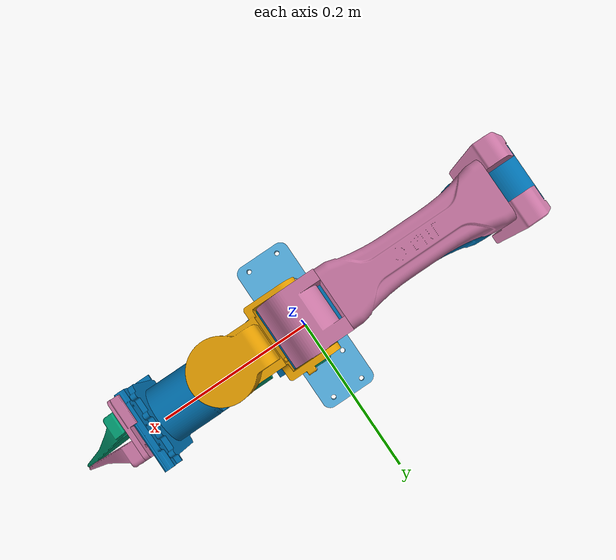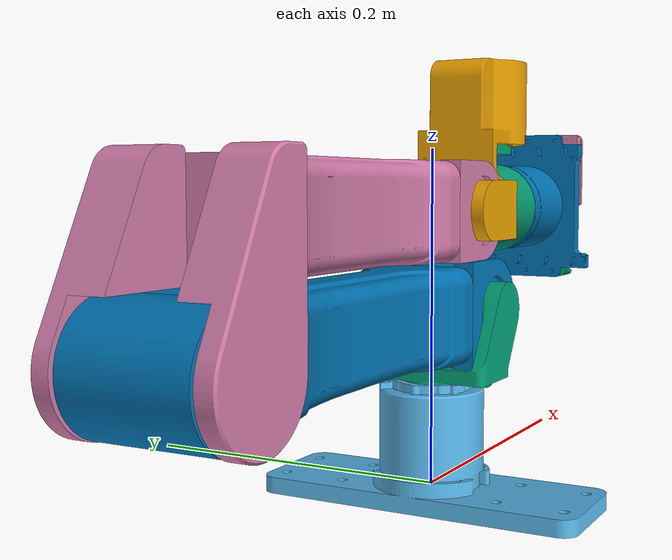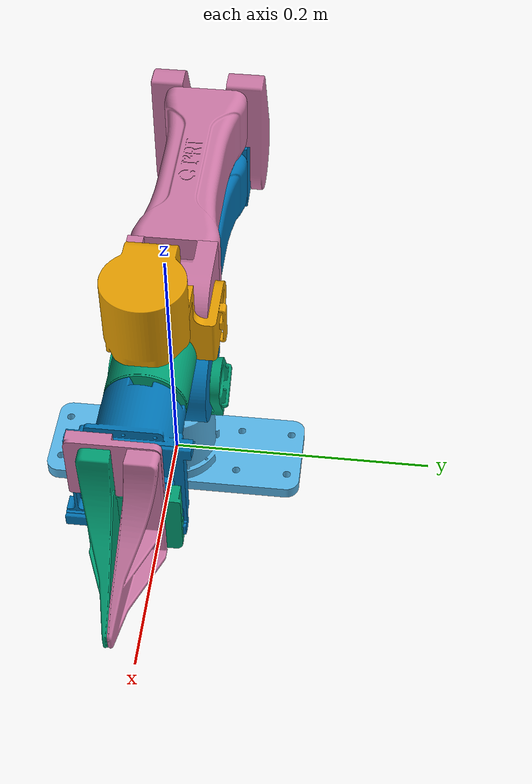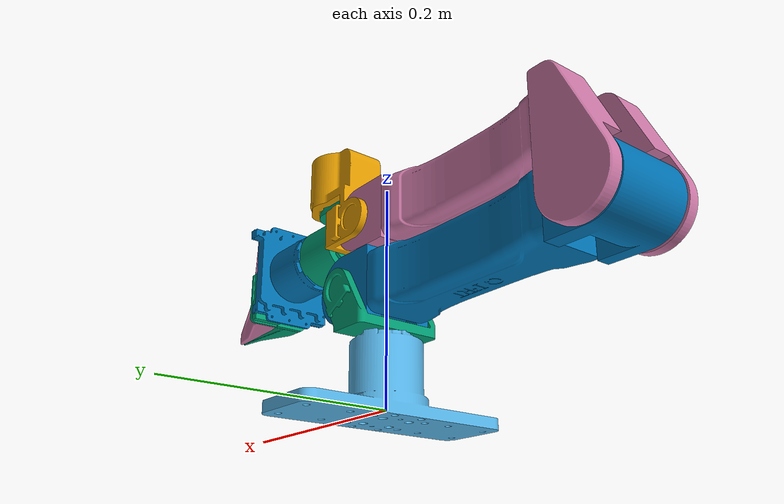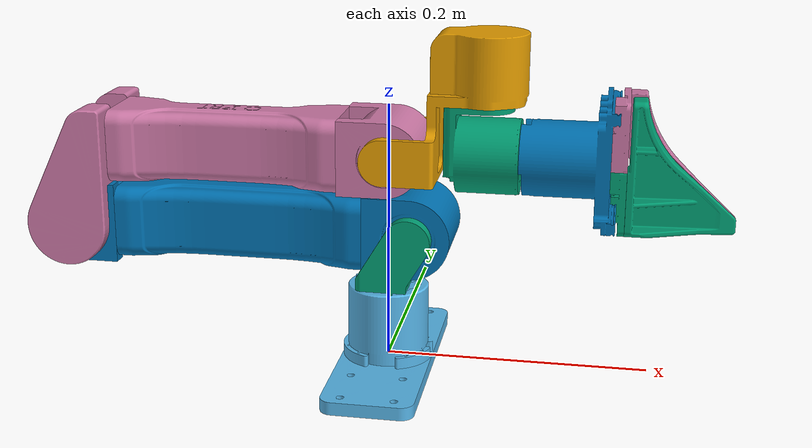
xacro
<?xml version="1.0" ?>
<robot xmlns:xacro="http://www.ros.org/wiki/xacro" name="yam">
   <!-- Include the arm macro -->
   <xacro:include filename="$(find yam_arm_description)/urdf/yam_arm_macro.xacro"/>

   <!-- World link -->
   <link name="world">
      <inertial>
         <origin xyz="0.0 0.0 0.0" rpy="0.0 0.0 0.0"/>
         <mass value="0.0"/>
         <inertia ixx="0.0" iyy="0.0" izz="0.0" ixy="0" ixz="0" iyz="0"/>
      </inertial>
   </link>

   <!-- Use the yam_arm macro with empty prefix, parent_link="world", and camera disabled -->
   <xacro:yam_arm prefix="" parent_link="world" xyz="0.0 0.0 0.0" rpy="0.0 0.0 0.0" use_camera="false"/>

</robot>

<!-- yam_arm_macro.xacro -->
<robot xmlns:xacro="http://www.ros.org/wiki/xacro">
  <xacro:macro name="yam_arm" params="prefix parent_link xyz rpy use_camera:=false">
    <!-- Arm base link -->
    <link name="${prefix}arm">
      <inertial>
        <origin xyz="0.0 0.0 0.026" rpy="0.0 0.0 0.0"/>
        <mass value="0.21895644158459424"/>
        <inertia ixx="0.00013879124248906134" iyy="0.00013879124248906134" izz="0.00010282878735692499" ixy="0" ixz="0" iyz="0"/>
      </inertial>
      <visual name="${prefix}model2">
        <origin xyz="-2.0738360577213484e-05 2.041311002275178e-05 0.01154286287615687" rpy="1.5701130102263443 0.005344186766801151 -3.1414365496107033"/>
        <geometry>
          <mesh filename="package://yam_arm_description/meshes/converted_model2_808080ff.obj"/>
        </geometry>
      </visual>
      <collision name="${prefix}model2_collision">
        <origin xyz="-2.0738360577213484e-05 2.041311002275178e-05 0.01154286287615687" rpy="1.5701130102263443 0.005344186766801151 -3.1414365496107033"/>
        <geometry>
          <mesh filename="package://yam_arm_description/meshes/converted_model2_808080ff.obj"/>
        </geometry>
      </collision>
    </link>
    <joint type="fixed" name="${prefix}parent2arm_fixed">
      <parent link="${parent_link}"/>
      <child link="${prefix}arm"/>
      <origin xyz="${xyz}" rpy="${rpy}"/>
    </joint>

    <!-- Link 1 -->
    <link name="${prefix}link_1">
      <inertial>
        <origin xyz="-0.00192861 -0.00795735 0.0208176" rpy="1.6743480392523338 -0.6015439689011491 1.5666873963753192"/>
        <mass value="0.12415"/>
        <inertia ixx="0.000180751" iyy="0.000145532" izz="5.89179e-05" ixy="0" ixz="0" iyz="0"/>
      </inertial>
      <visual name="${prefix}model2__2">
        <origin xyz="0.0007117901440024366 -0.008267794027987337 0.022250179687008112" rpy="1.5650454550240567 -0.6317582807873867 1.5710673633815686"/>
        <geometry>
          <mesh filename="package://yam_arm_description/meshes/converted_model2__2_808080ff.obj"/>
        </geometry>
      </visual>
      <collision name="${prefix}model2__2_collision">
        <origin xyz="0.0007117901440024366 -0.008267794027987337 0.022250179687008112" rpy="1.5650454550240567 -0.6317582807873867 1.5710673633815686"/>
        <geometry>
          <mesh filename="package://yam_arm_description/meshes/converted_model2__2_808080ff.obj"/>
        </geometry>
      </collision>
    </link>
    <link name="${prefix}joint1_link">
      <inertial>
        <origin xyz="0.0 0.0 0.0" rpy="0.0 0.0 0.0"/>
        <mass value="0.001"/>
        <inertia ixx="1e-09" iyy="1e-09" izz="1e-09" ixy="0" ixz="0" iyz="0"/>
      </inertial>
    </link>
    <joint type="revolute" name="${prefix}joint1">
      <parent link="${prefix}arm"/>
      <child link="${prefix}joint1_link"/>
      <origin xyz="0.0 0.0 0.0631" rpy="0.0 0.0 1.5707963267948963"/>
      <axis xyz="0.0 0.0 1.0"/>
      <limit lower="-2.61799" upper="3.05433" effort="100" velocity="100"/>
    </joint>
    <joint type="fixed" name="${prefix}joint1_offset">
      <parent link="${prefix}joint1_link"/>
      <child link="${prefix}link_1"/>
      <origin xyz="-0.0 -0.0 -0.0" rpy="0.0 0.0 0.0"/>
    </joint>

    <!-- Link 2 -->
    <link name="${prefix}link_2">
      <inertial>
        <origin xyz="0.132008 2.10599e-06 0.000293073" rpy="1.5707963267948966 0.0 1.5707963267948966"/>
        <mass value="1.24434"/>
        <inertia ixx="0.0121902" iyy="0.0121318" izz="0.000683304" ixy="0" ixz="0" iyz="0"/>
      </inertial>
      <visual name="${prefix}model2__3">
        <origin xyz="0.26007948449650414 2.5977632368834325e-07 0.00022869283697025413" rpy="0.0012886015838013758 0.0 1.5707963267948966"/>
        <geometry>
          <mesh filename="package://yam_arm_description/meshes/converted_model2__3_808080ff.obj"/>
        </geometry>
      </visual>
      <collision name="${prefix}model2__3_collision">
        <origin xyz="0.26007948449650414 2.5977632368834325e-07 0.00022869283697025413" rpy="0.0012886015838013758 0.0 1.5707963267948966"/>
        <geometry>
          <mesh filename="package://yam_arm_description/meshes/converted_model2__3_808080ff.obj"/>
        </geometry>
      </collision>
      <visual name="${prefix}model2__4">
        <origin xyz="0.003920561027152974 2.5977629421192194e-07 0.00022869282878015162" rpy="-0.0012886020855807743 0.0 1.5707963267948966"/>
        <geometry>
          <mesh filename="package://yam_arm_description/meshes/converted_model2__4_808080ff.obj"/>
        </geometry>
      </visual>
      <collision name="${prefix}model2__4_collision">
        <origin xyz="0.003920561027152974 2.5977629421192194e-07 0.00022869282878015162" rpy="-0.0012886020855807743 0.0 1.5707963267948966"/>
        <geometry>
          <mesh filename="package://yam_arm_description/meshes/converted_model2__4_808080ff.obj"/>
        </geometry>
      </collision>
      <visual name="${prefix}model2__5">
        <origin xyz="0.1320117461361114 -1.306943646950387e-05 9.079293692478702e-08" rpy="1.5720341600620127 -1.5679213575591051 -1.5720413321413815"/>
        <geometry>
          <mesh filename="package://yam_arm_description/meshes/converted_model2__5_808080ff.obj"/>
        </geometry>
      </visual>
      <collision name="${prefix}model2__5_collision">
        <origin xyz="0.1320117461361114 -1.306943646950387e-05 9.079293692478702e-08" rpy="1.5720341600620127 -1.5679213575591051 -1.5720413321413815"/>
        <geometry>
          <mesh filename="package://yam_arm_description/meshes/converted_model2__5_808080ff.obj"/>
        </geometry>
      </collision>
    </link>
    <link name="${prefix}joint2_link">
      <inertial>
        <origin xyz="0.0 0.0 0.0" rpy="0.0 0.0 0.0"/>
        <mass value="0.001"/>
        <inertia ixx="1e-09" iyy="1e-09" izz="1e-09" ixy="0" ixz="0" iyz="0"/>
      </inertial>
    </link>
    <joint type="revolute" name="${prefix}joint2">
      <parent link="${prefix}link_1"/>
      <child link="${prefix}joint2_link"/>
      <origin xyz="2.5e-05 -0.02 0.0409" rpy="1.5707963267948966 0.0 1.5707963267948966"/>
      <axis xyz="0.0 0.0 1.0"/>
      <limit lower="-1.0e-03" upper="3.66519" effort="300" velocity="100"/>
    </joint>
    <joint type="fixed" name="${prefix}joint2_offset">
      <parent link="${prefix}joint2_link"/>
      <child link="${prefix}link_2"/>
      <origin xyz="-0.0 -0.0 -0.0" rpy="0.0 0.0 0.0"/>
    </joint>

    <!-- Link 3 -->
    <link name="${prefix}link_3">
      <inertial>
        <origin xyz="-0.121816 -0.054846 -0.000111108" rpy="1.5707963267948966 0.0 1.5707963267948966"/>
        <mass value="0.853698"/>
        <inertia ixx="0.00699732" iyy="0.00696112" izz="0.000788244" ixy="0" ixz="0" iyz="0"/>
      </inertial>
      <visual name="${prefix}model2__6">
        <origin xyz="-0.24063976713274154 -0.059999782142154706 -0.003760273578300405" rpy="3.0364915071378875 0.0 -1.5707963267948968"/>
        <geometry>
          <mesh filename="package://yam_arm_description/meshes/converted_model2__6_808080ff.obj"/>
        </geometry>
      </visual>
      <collision name="${prefix}model2__6_collision">
        <origin xyz="-0.24063976713274154 -0.059999782142154706 -0.003760273578300405" rpy="3.0364915071378875 0.0 -1.5707963267948968"/>
        <geometry>
          <mesh filename="package://yam_arm_description/meshes/converted_model2__6_808080ff.obj"/>
        </geometry>
      </collision>
      <visual name="${prefix}model2__7">
        <origin xyz="-0.007710009148021196 -0.03486048010433765 0.0347071645682882" rpy="-2.87879006743723 1.4720957652931421 1.6013719605643306"/>
        <geometry>
          <mesh filename="package://yam_arm_description/meshes/converted_model2__7_808080ff.obj"/>
        </geometry>
      </visual>
      <collision name="${prefix}model2__7_collision">
        <origin xyz="-0.007710009148021196 -0.03486048010433765 0.0347071645682882" rpy="-2.87879006743723 1.4720957652931421 1.6013719605643306"/>
        <geometry>
          <mesh filename="package://yam_arm_description/meshes/converted_model2__7_808080ff.obj"/>
        </geometry>
      </collision>
      <visual name="${prefix}model2__8">
        <origin xyz="-0.1206720859561709 -0.06001334031535149 5.408345552423209e-07" rpy="1.5707945314613085 0.0026832997041226214 -1.570809065297576"/>
        <geometry>
          <mesh filename="package://yam_arm_description/meshes/converted_model2__8_808080ff.obj"/>
        </geometry>
      </visual>
      <collision name="${prefix}model2__8_collision">
        <origin xyz="-0.1206720859561709 -0.06001334031535149 5.408345552423209e-07" rpy="1.5707945314613085 0.0026832997041226214 -1.570809065297576"/>
        <geometry>
          <mesh filename="package://yam_arm_description/meshes/converted_model2__8_808080ff.obj"/>
        </geometry>
      </collision>
      <visual name="${prefix}model2__9">
        <origin xyz="-0.008240431625057998 -0.03737256683266851 -0.033699619180835645" rpy="0.28836143122615043 1.443690062944695 -1.515041718980295"/>
        <geometry>
          <mesh filename="package://yam_arm_description/meshes/converted_model2__9_808080ff.obj"/>
        </geometry>
      </visual>
      <collision name="${prefix}model2__9_collision">
        <origin xyz="-0.008240431625057998 -0.03737256683266851 -0.033699619180835645" rpy="0.28836143122615043 1.443690062944695 -1.515041718980295"/>
        <geometry>
          <mesh filename="package://yam_arm_description/meshes/converted_model2__9_808080ff.obj"/>
        </geometry>
      </collision>
    </link>
    <link name="${prefix}joint3_link">
      <inertial>
        <origin xyz="0.0 0.0 0.0" rpy="0.0 0.0 0.0"/>
        <mass value="0.001"/>
        <inertia ixx="1e-09" iyy="1e-09" izz="1e-09" ixy="0" ixz="0" iyz="0"/>
      </inertial>
    </link>
    <joint type="revolute" name="${prefix}joint3">
      <parent link="${prefix}link_2"/>
      <child link="${prefix}joint3_link"/>
      <origin xyz="0.264 0.0 0.0" rpy="3.141592653589793 0.0 0.0"/>
      <axis xyz="0.0 0.0 1.0"/>
      <limit lower="-1.0e-03" upper="3.66519" effort="300" velocity="100"/>
    </joint>
    <joint type="fixed" name="${prefix}joint3_offset">
      <parent link="${prefix}joint3_link"/>
      <child link="${prefix}link_3"/>
      <origin xyz="-0.0 -0.0 -0.0" rpy="0.0 0.0 0.0"/>
    </joint>

    <!-- Link 4 -->
    <link name="${prefix}link_4">
      <inertial>
        <origin xyz="-0.0769778 -0.0527104 0.000154878" rpy="1.5707963267948966 0.0 -0.6801532411309218"/>
        <mass value="0.463511"/>
        <inertia ixx="0.000791532" iyy="0.000744733" izz="0.000282116" ixy="0" ixz="0" iyz="0"/>
      </inertial>
      <visual name="${prefix}model2__10">
        <origin xyz="-0.046776068687813616 -0.038270471745625256 -0.0008915243508352188" rpy="1.5394854457020648 0.021662003917252814 -0.7117475435376935"/>
        <geometry>
          <mesh filename="package://yam_arm_description/meshes/converted_model2__10_808080ff.obj"/>
        </geometry>
      </visual>
      <collision name="${prefix}model2__10_collision">
        <origin xyz="-0.046776068687813616 -0.038270471745625256 -0.0008915243508352188" rpy="1.5394854457020648 0.021662003917252814 -0.7117475435376935"/>
        <geometry>
          <mesh filename="package://yam_arm_description/meshes/converted_model2__10_808080ff.obj"/>
        </geometry>
      </collision>
    </link>
    <link name="${prefix}joint4_link">
      <inertial>
        <origin xyz="0.0 0.0 0.0" rpy="0.0 0.0 0.0"/>
        <mass value="0.001"/>
        <inertia ixx="1e-09" iyy="1e-09" izz="1e-09" ixy="0" ixz="0" iyz="0"/>
      </inertial>
    </link>
    <joint type="revolute" name="${prefix}joint4">
      <parent link="${prefix}link_3"/>
      <child link="${prefix}joint4_link"/>
      <origin xyz="-0.245 -0.06 0.0" rpy="0.0 0.0 0.0"/>
      <axis xyz="0.0 0.0 1.0"/>
      <limit lower="-1.5708" upper="1.5708" effort="100" velocity="100"/>
    </joint>
    <joint type="fixed" name="${prefix}joint4_offset">
      <parent link="${prefix}joint4_link"/>
      <child link="${prefix}link_4"/>
      <origin xyz="-0.0 -0.0 -0.0" rpy="0.0 0.0 0.0"/>
    </joint>

    <!-- Link 5 -->
    <link name="${prefix}link_5">
      <inertial>
        <origin xyz="3.64861e-05 0.00025665 0.0353526" rpy="0.0 0.0 0.0"/>
        <mass value="0.350962"/>
        <inertia ixx="0.000197802" iyy="0.0001775" izz="0.000147402" ixy="0" ixz="0" iyz="0"/>
      </inertial>
      <visual name="${prefix}model2__11">
        <origin xyz="5.815639855540116e-05 -0.0005553836621680353 0.03206235288381598" rpy="2.67318045036048 0.0016544870659682687 -0.01152938218496731"/>
        <geometry>
          <mesh filename="package://yam_arm_description/meshes/converted_model2__11_808080ff.obj"/>
        </geometry>
      </visual>
      <collision name="${prefix}model2__11_collision">
        <origin xyz="5.815639855540116e-05 -0.0005553836621680353 0.03206235288381598" rpy="2.67318045036048 0.0016544870659682687 -0.01152938218496731"/>
        <geometry>
          <mesh filename="package://yam_arm_description/meshes/converted_model2__11_808080ff.obj"/>
        </geometry>
      </collision>
    </link>
    <link name="${prefix}joint5_link">
      <inertial>
        <origin xyz="0.0 0.0 0.0" rpy="0.0 0.0 0.0"/>
        <mass value="0.001"/>
        <inertia ixx="1e-09" iyy="1e-09" izz="1e-09" ixy="0" ixz="0" iyz="0"/>
      </inertial>
    </link>
    <joint type="revolute" name="${prefix}joint5">
      <parent link="${prefix}link_4"/>
      <child link="${prefix}joint5_link"/>
      <origin xyz="-0.074 -0.0395 2.5e-05" rpy="-1.5707963267948966 1.5707963267948966 0.0"/>
      <axis xyz="0.0 0.0 1.0"/>
      <limit lower="-1.5708" upper="1.5708" effort="100" velocity="100"/>
    </joint>
    <joint type="fixed" name="${prefix}joint5_offset">
      <parent link="${prefix}joint5_link"/>
      <child link="${prefix}link_5"/>
      <origin xyz="-0.0 -0.0 -0.0" rpy="0.0 0.0 0.0"/>
    </joint>

    <!-- Link 6 -->
    <link name="${prefix}link_6">
      <inertial>
        <origin xyz="-0.000217767 7.37059e-05 0.0270545" rpy="1.5707963267948963 0.0 0.0"/>
        <mass value="0.367476"/>
        <inertia ixx="0.000265958" iyy="0.000242686" izz="0.000227409" ixy="0" ixz="0" iyz="0"/>
      </inertial>
      <visual name="${prefix}model2__12">
        <origin xyz="8.788302043375991e-05 0.0001190912220788709 0.05116721790419726" rpy="-1.7453668887584697 1.565490971850807 -1.9699125405676954"/>
        <geometry>
          <mesh filename="package://yam_arm_description/meshes/converted_model2__12_808080ff.obj"/>
        </geometry>
      </visual>
      <collision name="${prefix}model2__12_collision">
        <origin xyz="8.788302043375991e-05 0.0001190912220788709 0.05116721790419726" rpy="-1.7453668887584697 1.565490971850807 -1.9699125405676954"/>
        <geometry>
          <mesh filename="package://yam_arm_description/meshes/converted_model2__12_808080ff.obj"/>
        </geometry>
      </collision>
      <visual name="${prefix}model2__13">
        <origin xyz="-0.00017825474995774047 1.6195054943213272e-05 0.03422382038141725" rpy="-1.5799559470247646 0.8170286688385331 -0.14641337505452354"/>
        <geometry>
          <mesh filename="package://yam_arm_description/meshes/converted_model2__13_808080ff.obj"/>
        </geometry>
      </visual>
      <collision name="${prefix}model2__13_collision">
        <origin xyz="-0.00017825474995774047 1.6195054943213272e-05 0.03422382038141725" rpy="-1.5799559470247646 0.8170286688385331 -0.14641337505452354"/>
        <geometry>
          <mesh filename="package://yam_arm_description/meshes/converted_model2__13_808080ff.obj"/>
        </geometry>
      </collision>
    </link>
    <link name="${prefix}joint6_link">
      <inertial>
        <origin xyz="0.0 0.0 0.0" rpy="0.0 0.0 0.0"/>
        <mass value="0.001"/>
        <inertia ixx="1e-09" iyy="1e-09" izz="1e-09" ixy="0" ixz="0" iyz="0"/>
      </inertial>
    </link>
    <joint type="revolute" name="${prefix}joint6">
      <parent link="${prefix}link_5"/>
      <child link="${prefix}joint6_link"/>
      <origin xyz="0.0 0.0353 0.0395" rpy="-1.5707963267948963 0.0 0.0"/>
      <axis xyz="0.0 0.0 1.0"/>
      <limit lower="-2.0944" upper="2.0944" effort="100" velocity="100"/>
    </joint>
    <joint type="fixed" name="${prefix}joint6_offset">
      <parent link="${prefix}joint6_link"/>
      <child link="${prefix}link_6"/>
      <origin xyz="-0.0 -0.0 -0.0" rpy="0.0 0.0 0.0"/>
    </joint>

    <!-- Gripper: Left Finger -->
    <link name="${prefix}link_left_finger">
      <inertial>
        <origin xyz="-0.0192995 -0.0365902 0.039774" rpy="1.401155911297378 -0.506095322833723 -0.42940521230428"/>
        <mass value="0.118"/>
        <inertia ixx="0.000159084" iyy="0.000154909" izz="4.63655e-05" ixy="0" ixz="0" iyz="0"/>
      </inertial>
      <visual name="${prefix}model2__14">
        <origin xyz="-0.02621919095860112 -0.050961301789609365 0.04847966761952425" rpy="1.2436149090470108 -1.3351755324428634 3.1192068678405445"/>
        <geometry>
          <mesh filename="package://yam_arm_description/meshes/converted_model2__14_808080ff.obj"/>
        </geometry>
      </visual>
      <collision name="${prefix}model2__14_collision">
        <origin xyz="-0.02621919095860112 -0.050961301789609365 0.04847966761952425" rpy="1.2436149090470108 -1.3351755324428634 3.1192068678405445"/>
        <geometry>
          <mesh filename="package://yam_arm_description/meshes/converted_model2__14_808080ff.obj"/>
        </geometry>
      </collision>
      <visual name="${prefix}model2__15">
        <origin xyz="-0.0018267628293356375 -0.014013453565219658 0.02860778296204746" rpy="-0.08499655397451025 -0.08210615684708134 0.012014286826329146"/>
        <geometry>
          <mesh filename="package://yam_arm_description/meshes/converted_model2__15_808080ff.obj"/>
        </geometry>
      </visual>
      <collision name="${prefix}model2__15_collision">
        <origin xyz="-0.0018267628293356375 -0.014013453565219658 0.02860778296204746" rpy="-0.08499655397451025 -0.08210615684708134 0.012014286826329146"/>
        <geometry>
          <mesh filename="package://yam_arm_description/meshes/converted_model2__15_808080ff.obj"/>
        </geometry>
      </collision>
    </link>
    <link name="${prefix}left_finger_link">
      <inertial>
        <origin xyz="0.0 0.0 0.0" rpy="0.0 0.0 0.0"/>
        <mass value="0.001"/>
        <inertia ixx="1e-09" iyy="1e-09" izz="1e-09" ixy="0" ixz="0" iyz="0"/>
      </inertial>
    </link>
    <joint type="prismatic" name="${prefix}left_finger">
      <parent link="${prefix}link_6"/>
      <child link="${prefix}left_finger_link"/>
      <origin xyz="-0.037 0.0392 0.0605" rpy="-0.0 1.5707963267948966 0.0"/>
      <axis xyz="0.0 0.0 1.0"/>
      <limit lower="-0.00205" upper="0.037524" effort="100" velocity="100"/>
    </joint>
    <joint type="fixed" name="${prefix}left_finger_offset">
      <parent link="${prefix}left_finger_link"/>
      <child link="${prefix}link_left_finger"/>
      <origin xyz="-0.0 -0.0 -0.0" rpy="0.0 0.0 0.0"/>
    </joint>
    <link name="${prefix}lf_rot">
      <inertial>
        <origin xyz="-0.008421052631578949 -0.015789473684210527 0.020421052631578947" rpy="2.03719733945046 0.34503462898803194 1.5781769326774222"/>
        <mass value="0.039793506945470715"/>
        <inertia ixx="2.3910376870188726e-05" iyy="2.0730203360923295e-05" izz="5.660176249101842e-06" ixy="0" ixz="0" iyz="0"/>
      </inertial>
    </link>
    <joint type="fixed" name="${prefix}link_left_finger2lf_rot_fixed">
      <parent link="${prefix}link_left_finger"/>
      <child link="${prefix}lf_rot"/>
      <origin xyz="0.0 -0.0392 0.037" rpy="-1.5707963267948966 0.0 1.5707963267948966"/>
    </joint>
    <link name="${prefix}lf_down">
      <inertial>
        <origin xyz="0.004865675005941529 -0.012786258560154471 0.029346031921652322" rpy="0.25192924677866 0.2603701692584921 1.7911531458129852"/>
        <mass value="0.02077574023677297"/>
        <inertia ixx="1.5767067212852193e-05" iyy="1.3071054583294231e-05" izz="3.94367471938606e-06" ixy="0" ixz="0" iyz="0"/>
      </inertial>
    </link>
    <joint type="fixed" name="${prefix}lf_rot2lf_down_fixed">
      <parent link="${prefix}lf_rot"/>
      <child link="${prefix}lf_down"/>
      <origin xyz="-0.044 0.0 0.0" rpy="0.0 0.0 0.0"/>
    </joint>

    <!-- Gripper: Right Finger -->
    <link name="${prefix}link_right_finger">
      <inertial>
        <origin xyz="-0.0192995 0.0365902 -0.039774" rpy="-1.401155911297378 0.506095322833723 -0.42940521230428"/>
        <mass value="0.118"/>
        <inertia ixx="0.000159084" iyy="0.000154909" izz="4.63655e-05" ixy="0" ixz="0" iyz="0"/>
      </inertial>
      <visual name="${prefix}model2__16">
        <origin xyz="-0.001826763203738313 0.014013021507929144 -0.02860778467768097" rpy="-0.08499624911644794 0.08210615585822456 -0.012014239544932078"/>
        <geometry>
          <mesh filename="package://yam_arm_description/meshes/converted_model2__16_808080ff.obj"/>
        </geometry>
      </visual>
      <collision name="${prefix}model2__16_collision">
        <origin xyz="-0.001826763203738313 0.014013021507929144 -0.02860778467768097" rpy="-0.08499624911644794 0.08210615585822456 -0.012014239544932078"/>
        <geometry>
          <mesh filename="package://yam_arm_description/meshes/converted_model2__16_808080ff.obj"/>
        </geometry>
      </collision>
      <visual name="${prefix}model2__17">
        <origin xyz="-0.026152342123741346 0.026813733867866105 -0.04844908896546901" rpy="-1.8906094630983066 -1.338715519977303 -0.013733131456833558"/>
        <geometry>
          <mesh filename="package://yam_arm_description/meshes/converted_model2__17_808080ff.obj"/>
        </geometry>
      </visual>
      <collision name="${prefix}model2__17_collision">
        <origin xyz="-0.026152342123741346 0.026813733867866105 -0.04844908896546901" rpy="-1.8906094630983066 -1.338715519977303 -0.013733131456833558"/>
        <geometry>
          <mesh filename="package://yam_arm_description/meshes/converted_model2__17_808080ff.obj"/>
        </geometry>
      </collision>
    </link>
    <link name="${prefix}right_finger_link">
      <inertial>
        <origin xyz="0.0 0.0 0.0" rpy="0.0 0.0 0.0"/>
        <mass value="0.001"/>
        <inertia ixx="1e-09" iyy="1e-09" izz="1e-09" ixy="0" ixz="0" iyz="0"/>
      </inertial>
    </link>
    <joint type="prismatic" name="${prefix}right_finger">
      <parent link="${prefix}link_6"/>
      <child link="${prefix}right_finger_link"/>
      <origin xyz="0.037 -0.0392 0.0605" rpy="-0.0 1.5707963267948966 0.0"/>
      <axis xyz="0.0 0.0 1.0"/>
      <limit lower="-0.037524" upper="0.00205" effort="100" velocity="100"/>
      <mimic joint="${prefix}left_finger" multiplier="-1" offset="0"/>
    </joint>
    <joint type="fixed" name="${prefix}right_finger_offset">
      <parent link="${prefix}right_finger_link"/>
      <child link="${prefix}link_right_finger"/>
      <origin xyz="-0.0 -0.0 -0.0" rpy="0.0 0.0 0.0"/>
    </joint>
    <link name="${prefix}rf_rot">
      <inertial>
        <origin xyz="0.008421052631578949 -0.015789473684210527 0.020421052631578947" rpy="1.1043953141393332 0.34503462898803194 1.563415720912371"/>
        <mass value="0.039793506945470715"/>
        <inertia ixx="2.3910376870188726e-05" iyy="2.0730203360923295e-05" izz="5.660176249101842e-06" ixy="0" ixz="0" iyz="0"/>
      </inertial>
    </link>
    <joint type="fixed" name="${prefix}link_right_finger2rf_rot_fixed">
      <parent link="${prefix}link_right_finger"/>
      <child link="${prefix}rf_rot"/>
      <origin xyz="0.0 0.0392 -0.037" rpy="1.5707963267948966 0.0 -1.5707963267948966"/>
    </joint>
    <link name="${prefix}rf_down">
      <inertial>
        <origin xyz="-0.004865675005941529 -0.012786258560154471 0.029346031921652322" rpy="-0.25192924677866 0.2603701692584921 1.3504395077768079"/>
        <mass value="0.02077574023677297"/>
        <inertia ixx="1.5767067212852193e-05" iyy="1.3071054583294231e-05" izz="3.94367471938606e-06" ixy="0" ixz="0" iyz="0"/>
      </inertial>
    </link>
    <joint type="fixed" name="${prefix}rf_rot2rf_down_fixed">
      <parent link="${prefix}rf_rot"/>
      <child link="${prefix}rf_down"/>
      <origin xyz="0.044 0.0 0.0" rpy="0.0 0.0 0.0"/>
    </joint>

    <!-- Camera Support and D435 Camera (optional) -->
    <xacro:if value="${use_camera}">
      <link name="${prefix}camera_support">
        <inertial>
          <origin xyz="0.0 0.0 0.0" rpy="0.0 0.0 0.0"/>
          <mass value="0.1"/>
          <inertia ixx="0.0001" iyy="0.0001" izz="0.0001" ixy="0" ixz="0" iyz="0"/>
        </inertial>
        <visual name="${prefix}camera_support_visual">
          <origin xyz="0.0 0.0 0.0" rpy="0.0 0.0 0.0"/>
          <geometry>
            <mesh filename="package://yam_arm_description/meshes/camera_support.stl"/>
          </geometry>
        </visual>
        <collision name="${prefix}camera_support_collision">
          <origin xyz="0.0 0.0 0.0" rpy="0.0 0.0 0.0"/>
          <geometry>
            <mesh filename="package://yam_arm_description/meshes/camera_support.stl"/>
          </geometry>
        </collision>
      </link>
      <joint type="fixed" name="${prefix}link_6_to_camera_support_fixed">
        <parent link="${prefix}link_6"/>
        <child link="${prefix}camera_support"/>
        <origin xyz="-0.02618 0.04089 0.05052" rpy="1.5708 1.5708 3.14159"/>
      </joint>

      <link name="${prefix}d435">
        <inertial>
          <origin xyz="0.0 0.0 0.0" rpy="0.0 0.0 0.0"/>
          <mass value="0.072"/>
          <inertia ixx="0.0001" iyy="0.0001" izz="0.0001" ixy="0" ixz="0" iyz="0"/>
        </inertial>
        <visual name="${prefix}d435_visual">
          <origin xyz="0.0 0.0 0.0" rpy="0.0 0.0 0.0"/>
          <geometry>
            <mesh filename="package://yam_arm_description/meshes/D435.obj"/>
          </geometry>
        </visual>
        <collision name="${prefix}d435_collision">
          <origin xyz="0.0 0.0 0.0" rpy="0.0 0.0 0.0"/>
          <geometry>
            <mesh filename="package://yam_arm_description/meshes/D435.obj"/>
          </geometry>
        </collision>
      </link>
      <joint type="fixed" name="${prefix}camera_support2d435_fixed">
        <parent link="${prefix}camera_support"/>
        <child link="${prefix}d435"/>
        <origin xyz="-0.03014 0.00604 0.06023" rpy="2.6180 0.0 -1.5708"/>
      </joint>
    </xacro:if>
  </xacro:macro>
</robot>
